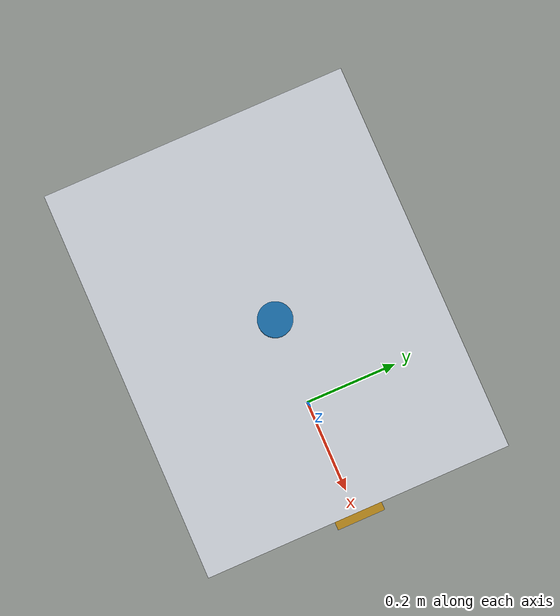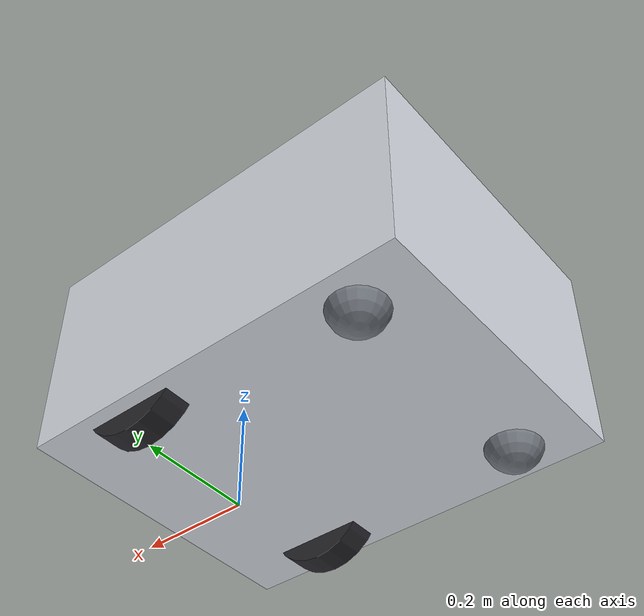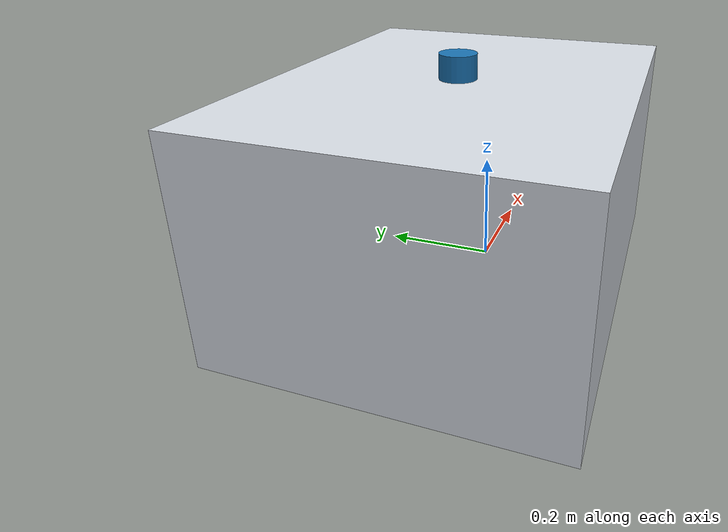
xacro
<?xml version="1.0"?>
<robot xmlns:xacro="http://www.ros.org/wiki/xacro" name="returnbot">

  <xacro:include filename="$(find returnbot_description)/urdf/returnbot.urdf.xacro"/>
  <xacro:include filename="$(find returnbot_sim)/urdf/gazebo_plugins.xacro"/>

</robot>

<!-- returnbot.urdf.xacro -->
<robot xmlns:xacro="http://www.ros.org/wiki/xacro" name="returnbot">

  <xacro:include filename="$(find returnbot_description)/urdf/robot_params.xacro"/>
  <xacro:include filename="$(find returnbot_description)/urdf/inertial_macros.xacro"/>
  <xacro:include filename="$(find returnbot_description)/urdf/materials.xacro"/>

  <xacro:include filename="$(find returnbot_description)/urdf/base.xacro"/>
  <xacro:include filename="$(find returnbot_description)/urdf/wheels.xacro"/>
  <xacro:include filename="$(find returnbot_description)/urdf/casters.xacro"/>
  <xacro:include filename="$(find returnbot_description)/urdf/sensors.xacro"/>

</robot>

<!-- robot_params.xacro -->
<robot xmlns:xacro="http://www.ros.org/wiki/xacro">

  <!-- ============================================================ 노출 인자 ==
       Phase 3 매트릭스 실험(차체폭 550/600/650 × 복도 유형)이 이 인자들만
       바꿔서 돌아가야 한다 (명세 Phase 1 완료 기준).
  -->
  <xacro:arg name="wheel_separation" default="0.45"/>
  <xacro:arg name="body_width"       default="0.55"/>
  <xacro:arg name="body_depth"       default="0.7"/>
  <xacro:arg name="body_height"      default="0.4"/>
  <xacro:arg name="wheel_radius"     default="0.1"/>
  <xacro:arg name="wheelbase"        default="0.4"/>
  <xacro:arg name="total_mass"       default="60.0"/>

  <xacro:property name="wheel_separation" value="${$(arg wheel_separation)}"/>
  <xacro:property name="body_width"       value="${$(arg body_width)}"/>
  <xacro:property name="body_depth"       value="${$(arg body_depth)}"/>
  <xacro:property name="body_height"      value="${$(arg body_height)}"/>
  <xacro:property name="wheel_radius"     value="${$(arg wheel_radius)}"/>
  <xacro:property name="wheelbase"        value="${$(arg wheelbase)}"/>
  <xacro:property name="total_mass"       value="${$(arg total_mass)}"/>

  <!-- =========================================================== 고정 치수 == -->
  <!-- 명세 §3 확정값 -->
  <xacro:property name="wheel_width"      value="0.05"/>
  <xacro:property name="caster_radius"    value="0.05"/>
  <xacro:property name="drive_load_ratio" value="0.6"/>

  <!-- TODO(확인) 명세 미기재. config/robot_dimensions.yaml 참조 -->
  <xacro:property name="caster_separation" value="0.4"/>
  <xacro:property name="ground_clearance"  value="0.04"/>
  <xacro:property name="wheel_mass"        value="2.5"/>
  <xacro:property name="caster_mass"       value="0.8"/>

  <!-- 센서. TODO(확인) 전부 데이터시트 확인 필요 -->
  <xacro:property name="lidar_size_x"      value="0.06"/>
  <xacro:property name="lidar_size_y"      value="0.06"/>
  <xacro:property name="lidar_size_z"      value="0.04"/>
  <xacro:property name="lidar_mass"        value="0.2"/>
  <!-- LD19 성능 제원 (명세 §3 확정값). Gazebo 센서 플러그인이 이 값을 그대로 쓴다. -->
  <xacro:property name="lidar_range_max"   value="12.0"/>
  <xacro:property name="lidar_range_min"   value="0.05"/>
  <xacro:property name="lidar_scan_rate"   value="10.0"/>
  <xacro:property name="imu_size_x"        value="0.02"/>
  <xacro:property name="imu_size_y"        value="0.02"/>
  <xacro:property name="imu_size_z"        value="0.005"/>
  <xacro:property name="imu_mass"          value="0.02"/>
  <xacro:property name="camera_size_x"     value="0.03"/>
  <xacro:property name="camera_size_y"     value="0.09"/>
  <xacro:property name="camera_size_z"     value="0.025"/>
  <xacro:property name="camera_mass"       value="0.08"/>
  <xacro:property name="camera_mount_height" value="0.3"/>

  <!-- 마찰. 명세 §8 - 시뮬 튜닝 시작점일 뿐이다 -->
  <xacro:property name="drive_wheel_mu"    value="1.0"/>
  <xacro:property name="caster_mu"         value="0.05"/>

  <xacro:property name="wheel_mass_total"  value="${2 * wheel_mass}"/>
  <xacro:property name="caster_mass_total" value="${2 * caster_mass}"/>
  <xacro:property name="sensor_mass_total" value="${lidar_mass + imu_mass + camera_mass}"/>
  <xacro:property name="chassis_mass"
                  value="${total_mass - wheel_mass_total - caster_mass_total - sensor_mass_total}"/>

  <!-- 카메라의 차체 기하중심 대비 전방 오프셋 -->
  <xacro:property name="camera_forward_offset" value="${body_depth/2.0 + camera_size_x/2.0}"/>
  <xacro:property name="body_group_mass" value="${chassis_mass + sensor_mass_total}"/>
  <xacro:property name="chassis_com_x"
                  value="${(caster_mass_total * wheelbase
                            - (1.0 - drive_load_ratio) * total_mass * wheelbase
                            - camera_mass * camera_forward_offset) / body_group_mass}"/>

  <!-- body_height 는 명세 §3의 차체 외형 전고(400mm)다. 실제 박스는 바닥
       이격(ground_clearance)만큼 얇아진다. -->
  <xacro:property name="box_height" value="${body_height - ground_clearance}"/>

  <!-- 차체 박스 중심. 박스는 균질이라 기하 중심 = 질량중심이다.
       z 는 base_link(=구동축 높이 wheel_radius) 기준 상대값. -->
  <xacro:property name="body_center_x" value="${chassis_com_x}"/>
  <xacro:property name="body_center_z" value="${ground_clearance + box_height/2.0 - wheel_radius}"/>
  <xacro:property name="body_top_z"    value="${body_height - wheel_radius}"/>
  <xacro:property name="body_front_x"  value="${body_center_x + body_depth/2.0}"/>

</robot>

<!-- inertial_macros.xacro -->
<!--
  관성 텐서 매크로.

  명세 Phase 1: "관성값은 xacro 매크로 계산". 관성값을 손으로 적어 넣으면
  치수를 바꿀 때마다 틀어지고, Phase 3 매트릭스 실험(차체폭 스윕)에서
  조용히 잘못된 물리를 쓰게 된다. 전부 치수에서 계산한다.

  모든 매크로는 링크 자체 좌표계 기준이며 균질 밀도를 가정한다.
-->
<robot xmlns:xacro="http://www.ros.org/wiki/xacro">

  <!-- 직육면체. x=길이(depth), y=폭(width), z=높이 -->
  <xacro:macro name="inertial_box" params="mass x y z *origin">
    <inertial>
      <xacro:insert_block name="origin"/>
      <mass value="${mass}"/>
      <inertia
        ixx="${mass * (y*y + z*z) / 12.0}" ixy="0.0" ixz="0.0"
        iyy="${mass * (x*x + z*z) / 12.0}" iyz="0.0"
        izz="${mass * (x*x + y*y) / 12.0}"/>
    </inertial>
  </xacro:macro>

  <!-- 원기둥. URDF 관례대로 축은 링크의 z축이다.
       바퀴는 조인트 origin의 rpy로 링크 전체를 돌려 y축 회전을 만든다. -->
  <xacro:macro name="inertial_cylinder" params="mass radius length *origin">
    <inertial>
      <xacro:insert_block name="origin"/>
      <mass value="${mass}"/>
      <inertia
        ixx="${mass * (3.0*radius*radius + length*length) / 12.0}" ixy="0.0" ixz="0.0"
        iyy="${mass * (3.0*radius*radius + length*length) / 12.0}" iyz="0.0"
        izz="${mass * radius * radius / 2.0}"/>
    </inertial>
  </xacro:macro>

  <xacro:macro name="inertial_sphere" params="mass radius *origin">
    <inertial>
      <xacro:insert_block name="origin"/>
      <mass value="${mass}"/>
      <inertia
        ixx="${2.0 * mass * radius * radius / 5.0}" ixy="0.0" ixz="0.0"
        iyy="${2.0 * mass * radius * radius / 5.0}" iyz="0.0"
        izz="${2.0 * mass * radius * radius / 5.0}"/>
    </inertial>
  </xacro:macro>

</robot>

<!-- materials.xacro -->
<!-- RViz 표시용 색상. Gazebo 재질은 Phase 2에서 별도로 붙인다. -->
<robot xmlns:xacro="http://www.ros.org/wiki/xacro">

  <material name="returnbot_body">
    <color rgba="0.85 0.87 0.90 1.0"/>
  </material>

  <material name="returnbot_wheel">
    <color rgba="0.15 0.15 0.17 1.0"/>
  </material>

  <material name="returnbot_caster">
    <color rgba="0.45 0.47 0.50 1.0"/>
  </material>

  <material name="returnbot_sensor">
    <color rgba="0.10 0.45 0.70 1.0"/>
  </material>

  <material name="returnbot_camera">
    <color rgba="0.75 0.55 0.10 1.0"/>
  </material>

</robot>

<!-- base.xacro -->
<robot xmlns:xacro="http://www.ros.org/wiki/xacro">

  <link name="base_footprint"/>

  <joint name="base_footprint_to_base_link" type="fixed">
    <parent link="base_footprint"/>
    <child link="base_link"/>
    <origin xyz="0 0 ${wheel_radius}" rpy="0 0 0"/>
  </joint>

  <link name="base_link">
    <visual>
      <origin xyz="${body_center_x} 0 ${body_center_z}" rpy="0 0 0"/>
      <geometry>
        <box size="${body_depth} ${body_width} ${box_height}"/>
      </geometry>
      <material name="returnbot_body"/>
    </visual>

    <collision>
      <origin xyz="${body_center_x} 0 ${body_center_z}" rpy="0 0 0"/>
      <geometry>
        <box size="${body_depth} ${body_width} ${box_height}"/>
      </geometry>
    </collision>

    <!-- 질량중심 x 는 명세 §3의 무게배분 60:40 에서 역산한 값이다
         (robot_params.xacro 의 chassis_com_x 주석 참조). -->
    <xacro:inertial_box mass="${chassis_mass}"
                        x="${body_depth}" y="${body_width}" z="${box_height}">
      <origin xyz="${body_center_x} 0 ${body_center_z}" rpy="0 0 0"/>
    </xacro:inertial_box>
  </link>

</robot>

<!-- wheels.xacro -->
<!--
  구동륜 2개 (차동구동). 조향기구 없음 (명세 §3).

  허브모터 + 솔리드타이어. 조인트는 continuous 이고 회전축은 링크 y축이다.
  링크 좌표계를 조인트 origin rpy 로 -90도 돌려 원기둥(기본 z축)의 축을
  차량 y축에 맞춘다. 관성 텐서는 링크 자체 좌표계 기준이므로 매크로를
  그대로 쓰면 된다.
-->
<robot xmlns:xacro="http://www.ros.org/wiki/xacro">

  <!-- side: 'left' | 'right', reflect: +1 | -1 (좌가 +y) -->
  <xacro:macro name="drive_wheel" params="side reflect">
    <joint name="${side}_wheel_joint" type="continuous">
      <parent link="base_link"/>
      <child link="${side}_wheel_link"/>
      <!-- 구동축은 base_link 원점에 있다 (x=0, z=0). -->
      <origin xyz="0 ${reflect * wheel_separation / 2.0} 0" rpy="${-pi/2.0} 0 0"/>
      <axis xyz="0 0 1"/>
      <dynamics damping="0.01" friction="0.0"/>
    </joint>

    <link name="${side}_wheel_link">
      <visual>
        <origin xyz="0 0 0" rpy="0 0 0"/>
        <geometry>
          <cylinder radius="${wheel_radius}" length="${wheel_width}"/>
        </geometry>
        <material name="returnbot_wheel"/>
      </visual>

      <collision>
        <origin xyz="0 0 0" rpy="0 0 0"/>
        <geometry>
          <cylinder radius="${wheel_radius}" length="${wheel_width}"/>
        </geometry>
      </collision>

      <xacro:inertial_cylinder mass="${wheel_mass}"
                               radius="${wheel_radius}" length="${wheel_width}">
        <origin xyz="0 0 0" rpy="0 0 0"/>
      </xacro:inertial_cylinder>
    </link>
  </xacro:macro>

  <xacro:drive_wheel side="left"  reflect="1"/>
  <xacro:drive_wheel side="right" reflect="-1"/>

</robot>

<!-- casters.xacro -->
<robot xmlns:xacro="http://www.ros.org/wiki/xacro">

  <!-- side: 'left' | 'right', reflect: +1 | -1 -->
  <xacro:macro name="caster" params="side reflect">
    <joint name="${side}_caster_joint" type="fixed">
      <parent link="base_link"/>
      <child link="${side}_caster_link"/>
      <!-- 후방(-x), 지면에 닿도록 z 는 caster_radius - wheel_radius -->
      <origin xyz="${-wheelbase} ${reflect * caster_separation / 2.0} ${caster_radius - wheel_radius}"
              rpy="0 0 0"/>
    </joint>

    <link name="${side}_caster_link">
      <visual>
        <origin xyz="0 0 0" rpy="0 0 0"/>
        <geometry>
          <sphere radius="${caster_radius}"/>
        </geometry>
        <material name="returnbot_caster"/>
      </visual>

      <collision>
        <origin xyz="0 0 0" rpy="0 0 0"/>
        <geometry>
          <sphere radius="${caster_radius}"/>
        </geometry>
      </collision>

      <xacro:inertial_sphere mass="${caster_mass}" radius="${caster_radius}">
        <origin xyz="0 0 0" rpy="0 0 0"/>
      </xacro:inertial_sphere>
    </link>
  </xacro:macro>

  <xacro:caster side="left"  reflect="1"/>
  <xacro:caster side="right" reflect="-1"/>

</robot>

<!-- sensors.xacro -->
<!--
  센서 프레임.

  Phase 1은 프레임과 TF만 세운다. Gazebo 센서 플러그인(스캔·IMU 발행)은
  Phase 2에서 별도 파일로 붙인다 — 실기/시뮬 분기는 launch 인자로만 한다는
  명세 §7 원칙에 따라 description 패키지에는 시뮬 전용 요소를 넣지 않는다.
-->
<robot xmlns:xacro="http://www.ros.org/wiki/xacro">

  <!-- ================================================================ LiDAR ==
       LD19: 360도, 12m, 10Hz. 차체 상부 중앙 (명세 §3).
       360도 시야를 확보하려면 차체 최상면 위로 올라와야 한다.
  -->
  <joint name="lidar_joint" type="fixed">
    <parent link="base_link"/>
    <child link="lidar_link"/>
    <origin xyz="${body_center_x} 0 ${body_top_z + lidar_size_z/2.0}" rpy="0 0 0"/>
  </joint>

  <link name="lidar_link">
    <visual>
      <origin xyz="0 0 0" rpy="0 0 0"/>
      <geometry>
        <cylinder radius="${lidar_size_x/2.0}" length="${lidar_size_z}"/>
      </geometry>
      <material name="returnbot_sensor"/>
    </visual>
    <xacro:inertial_cylinder mass="${lidar_mass}"
                             radius="${lidar_size_x/2.0}" length="${lidar_size_z}">
      <origin xyz="0 0 0" rpy="0 0 0"/>
    </xacro:inertial_cylinder>
  </link>

  <!-- ================================================================== IMU ==
       BNO085 6축. 차체 질량중심 근처에 둬야 회전 시 원심 가속도 성분이 작다.
  -->
  <joint name="imu_joint" type="fixed">
    <parent link="base_link"/>
    <child link="imu_link"/>
    <origin xyz="${body_center_x} 0 ${body_center_z}" rpy="0 0 0"/>
  </joint>

  <link name="imu_link">
    <visual>
      <origin xyz="0 0 0" rpy="0 0 0"/>
      <geometry>
        <box size="${imu_size_x} ${imu_size_y} ${imu_size_z}"/>
      </geometry>
      <material name="returnbot_sensor"/>
    </visual>
    <xacro:inertial_box mass="${imu_mass}"
                        x="${imu_size_x}" y="${imu_size_y}" z="${imu_size_z}">
      <origin xyz="0 0 0" rpy="0 0 0"/>
    </xacro:inertial_box>
  </link>

  <!-- =============================================================== 카메라 ==
       전방 1개. Phase 4의 AprilTag 도킹 정렬용.
  -->
  <joint name="camera_joint" type="fixed">
    <parent link="base_link"/>
    <child link="camera_link"/>
    <origin xyz="${body_front_x + camera_size_x/2.0} 0 ${camera_mount_height - wheel_radius}"
            rpy="0 0 0"/>
  </joint>

  <link name="camera_link">
    <visual>
      <origin xyz="0 0 0" rpy="0 0 0"/>
      <geometry>
        <box size="${camera_size_x} ${camera_size_y} ${camera_size_z}"/>
      </geometry>
      <material name="returnbot_camera"/>
    </visual>
    <xacro:inertial_box mass="${camera_mass}"
                        x="${camera_size_x}" y="${camera_size_y}" z="${camera_size_z}">
      <origin xyz="0 0 0" rpy="0 0 0"/>
    </xacro:inertial_box>
  </link>

  <!-- 광학 프레임 (REP-103): z 전방, x 우측, y 하방.
       vision 계열 노드(apriltag_ros 등)가 이 규약을 전제한다. -->
  <joint name="camera_optical_joint" type="fixed">
    <parent link="camera_link"/>
    <child link="camera_optical_link"/>
    <origin xyz="0 0 0" rpy="${-pi/2.0} 0 ${-pi/2.0}"/>
  </joint>

  <link name="camera_optical_link"/>

</robot>
